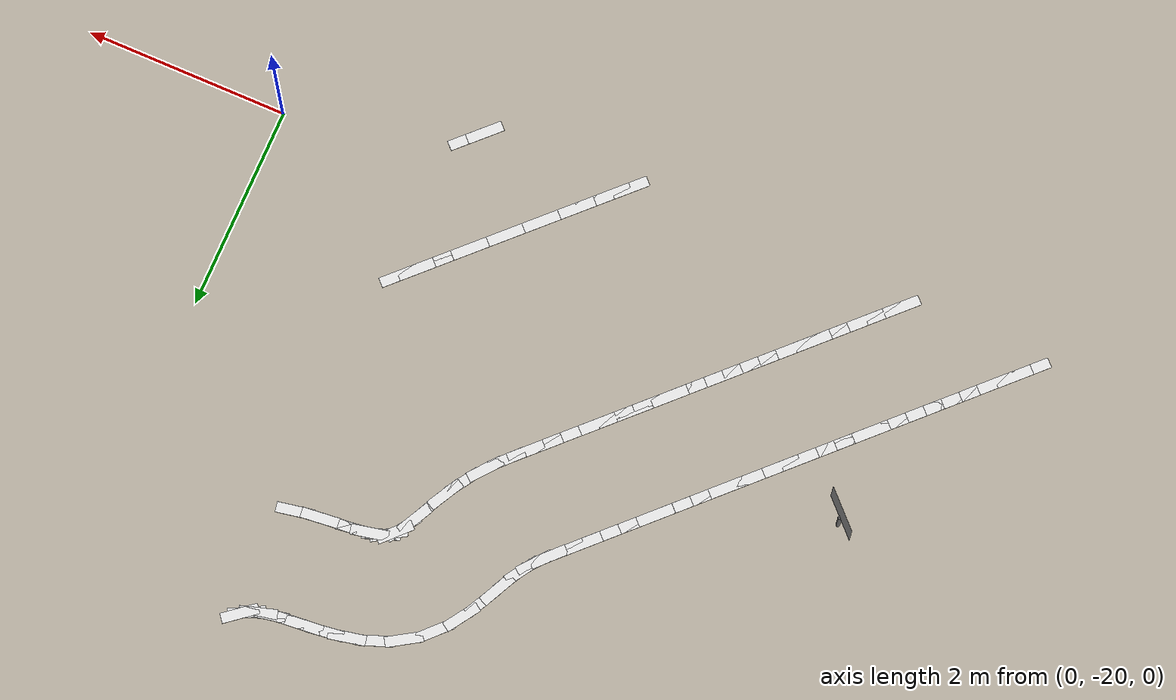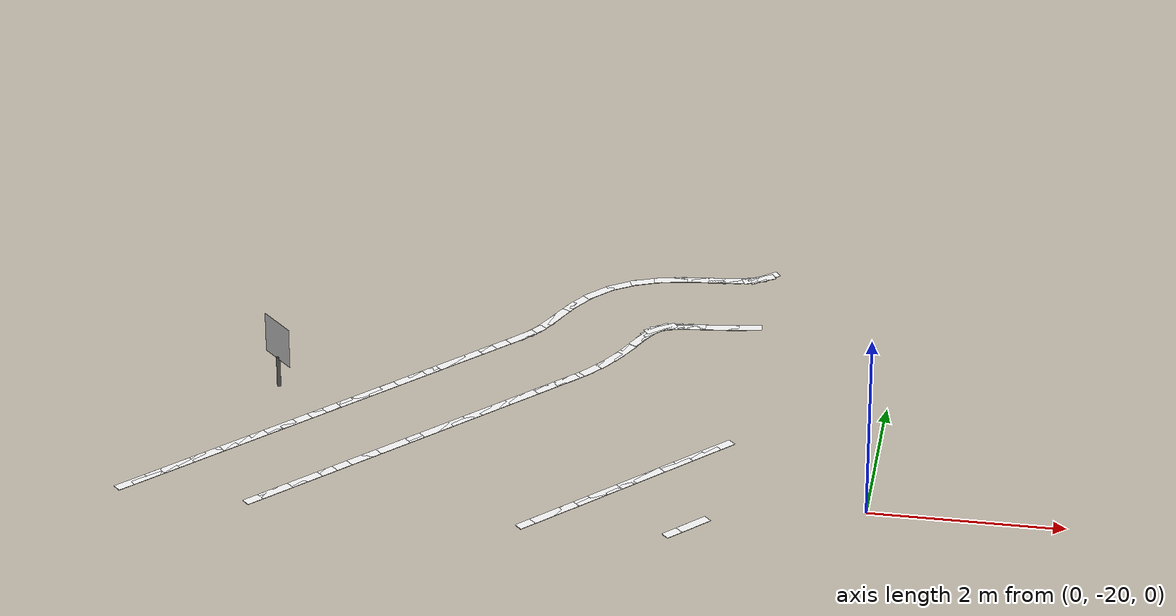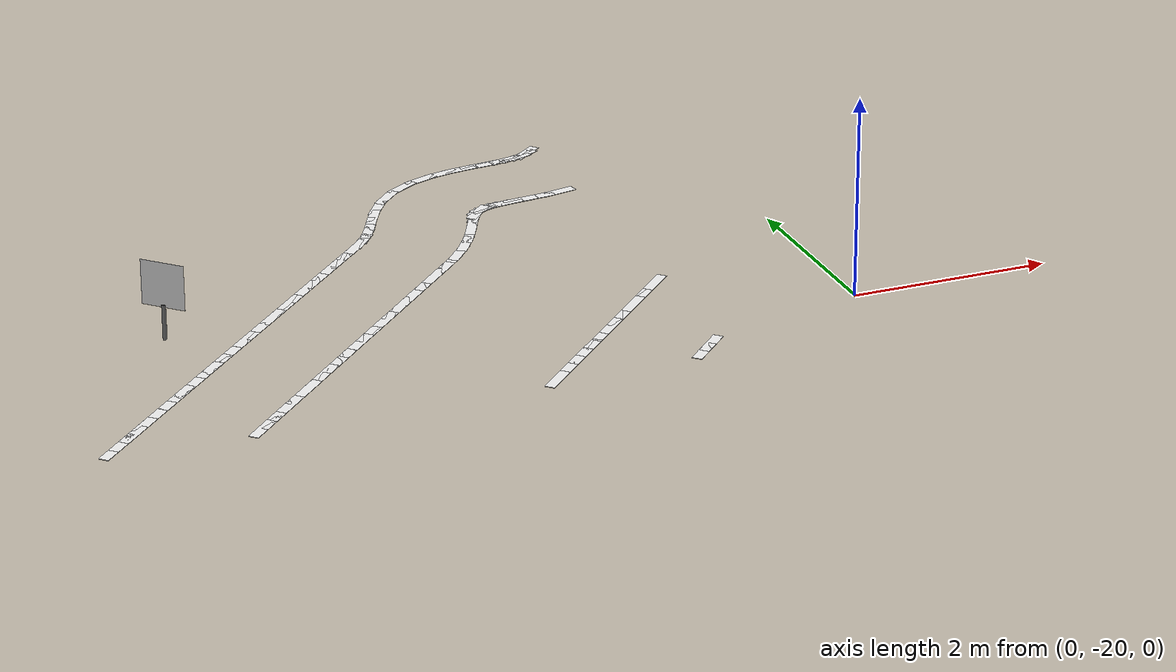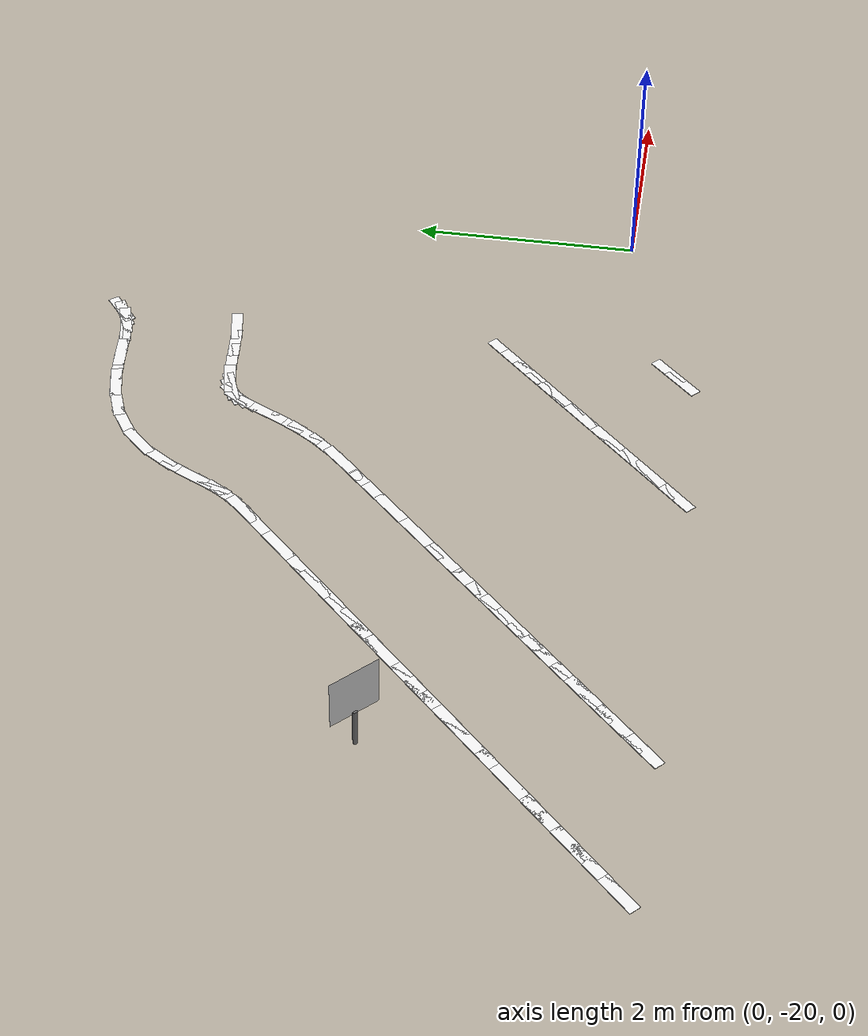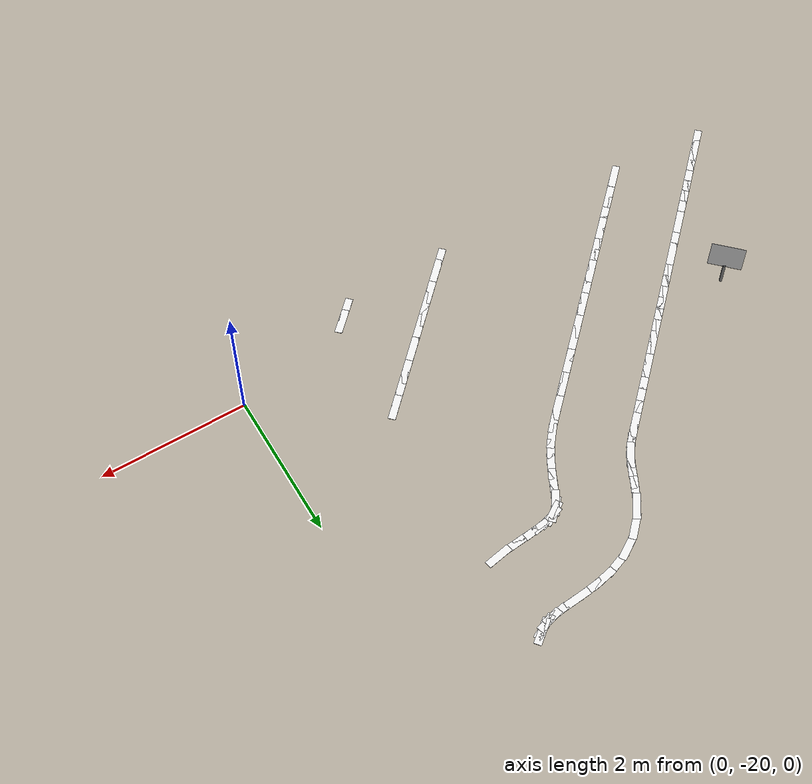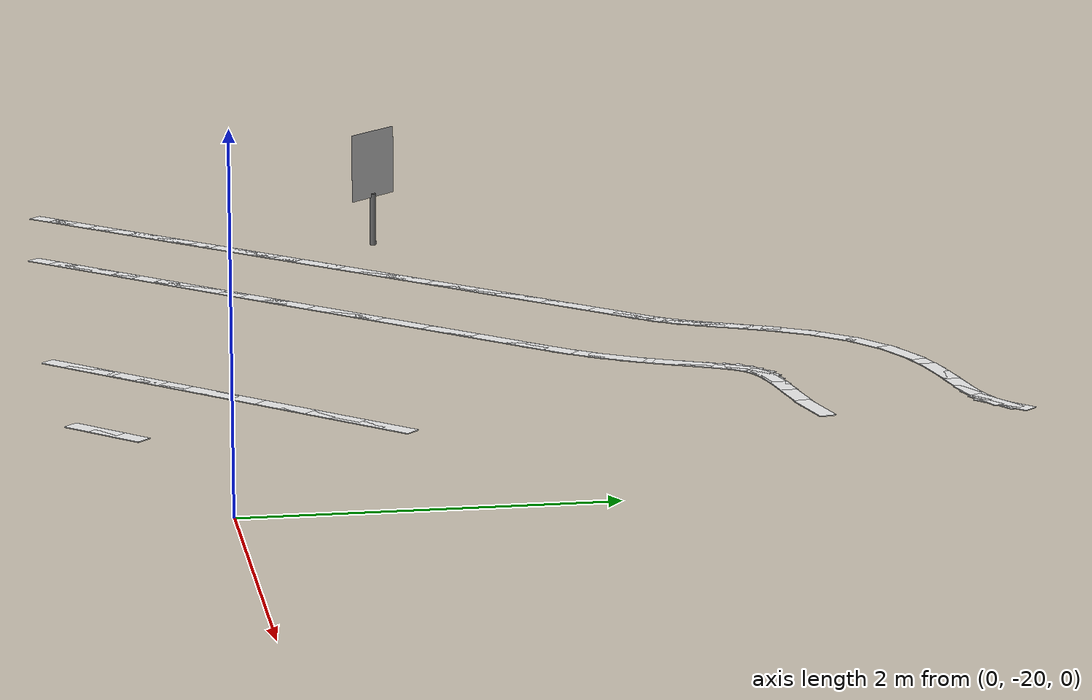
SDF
<sdf version="1.7">
 <world name="cone_lane">
  <model name="ground_plane">
   <static>true</static>
   <link name="link">
    <collision name="collision">
     <geometry><plane><normal>0 0 1</normal><size>150 150</size></plane></geometry>
     <surface><friction><ode><mu>1.0</mu></ode></friction></surface>
    </collision>
   </link>
  </model>
  <model name="line_L182">
   <static>true</static>
   <pose>-1.663 -16.570 0.0030 0 0 -2.9561</pose>
   <link name="link">
    <visual name="v">
     <geometry><box><size>0.360 0.100 0.005</size></box></geometry>
     <material>
      <ambient>0.85 0.85 0.85 1</ambient>
      <diffuse>0.95 0.95 0.95 1</diffuse>
      <specular>0.1 0.1 0.1 1</specular>
      <emissive>0.7 0.7 0.7 1</emissive>
     </material>
    </visual>
   </link>
  </model>
  <model name="line_L183">
   <static>true</static>
   <pose>-1.901 -16.603 0.0030 0 0 -3.0367</pose>
   <link name="link">
    <visual name="v">
     <geometry><box><size>0.360 0.100 0.005</size></box></geometry>
     <material>
      <ambient>0.85 0.85 0.85 1</ambient>
      <diffuse>0.95 0.95 0.95 1</diffuse>
      <specular>0.1 0.1 0.1 1</specular>
      <emissive>0.7 0.7 0.7 1</emissive>
     </material>
    </visual>
   </link>
  </model>
  <model name="line_L184">
   <static>true</static>
   <pose>-2.089 -16.621 0.0030 0 0 -3.0495</pose>
   <link name="link">
    <visual name="v">
     <geometry><box><size>0.360 0.100 0.005</size></box></geometry>
     <material>
      <ambient>0.85 0.85 0.85 1</ambient>
      <diffuse>0.95 0.95 0.95 1</diffuse>
      <specular>0.1 0.1 0.1 1</specular>
      <emissive>0.7 0.7 0.7 1</emissive>
     </material>
    </visual>
   </link>
  </model>
  <model name="line_L185">
   <static>true</static>
   <pose>-2.250 -16.638 0.0030 0 0 -3.0148</pose>
   <link name="link">
    <visual name="v">
     <geometry><box><size>0.360 0.100 0.005</size></box></geometry>
     <material>
      <ambient>0.85 0.85 0.85 1</ambient>
      <diffuse>0.95 0.95 0.95 1</diffuse>
      <specular>0.1 0.1 0.1 1</specular>
      <emissive>0.7 0.7 0.7 1</emissive>
     </material>
    </visual>
   </link>
  </model>
  <model name="line_L186">
   <static>true</static>
   <pose>-2.380 -16.659 0.0030 0 0 -2.9330</pose>
   <link name="link">
    <visual name="v">
     <geometry><box><size>0.360 0.100 0.005</size></box></geometry>
     <material>
      <ambient>0.85 0.85 0.85 1</ambient>
      <diffuse>0.95 0.95 0.95 1</diffuse>
      <specular>0.1 0.1 0.1 1</specular>
      <emissive>0.7 0.7 0.7 1</emissive>
     </material>
    </visual>
   </link>
  </model>
  <model name="line_L187">
   <static>true</static>
   <pose>-2.484 -16.688 0.0030 0 0 -2.7818</pose>
   <link name="link">
    <visual name="v">
     <geometry><box><size>0.360 0.100 0.005</size></box></geometry>
     <material>
      <ambient>0.85 0.85 0.85 1</ambient>
      <diffuse>0.95 0.95 0.95 1</diffuse>
      <specular>0.1 0.1 0.1 1</specular>
      <emissive>0.7 0.7 0.7 1</emissive>
     </material>
    </visual>
   </link>
  </model>
  <model name="line_L188">
   <static>true</static>
   <pose>-2.546 -16.718 0.0030 0 0 -2.5806</pose>
   <link name="link">
    <visual name="v">
     <geometry><box><size>0.360 0.100 0.005</size></box></geometry>
     <material>
      <ambient>0.85 0.85 0.85 1</ambient>
      <diffuse>0.95 0.95 0.95 1</diffuse>
      <specular>0.1 0.1 0.1 1</specular>
      <emissive>0.7 0.7 0.7 1</emissive>
     </material>
    </visual>
   </link>
  </model>
  <model name="line_L189">
   <static>true</static>
   <pose>-2.593 -16.757 0.0030 0 0 -2.3418</pose>
   <link name="link">
    <visual name="v">
     <geometry><box><size>0.360 0.100 0.005</size></box></geometry>
     <material>
      <ambient>0.85 0.85 0.85 1</ambient>
      <diffuse>0.95 0.95 0.95 1</diffuse>
      <specular>0.1 0.1 0.1 1</specular>
      <emissive>0.7 0.7 0.7 1</emissive>
     </material>
    </visual>
   </link>
  </model>
  <model name="line_L190">
   <static>true</static>
   <pose>-2.647 -16.826 0.0030 0 0 -2.1537</pose>
   <link name="link">
    <visual name="v">
     <geometry><box><size>0.360 0.100 0.005</size></box></geometry>
     <material>
      <ambient>0.85 0.85 0.85 1</ambient>
      <diffuse>0.95 0.95 0.95 1</diffuse>
      <specular>0.1 0.1 0.1 1</specular>
      <emissive>0.7 0.7 0.7 1</emissive>
     </material>
    </visual>
   </link>
  </model>
  <model name="line_L191">
   <static>true</static>
   <pose>-2.714 -16.943 0.0030 0 0 -2.0496</pose>
   <link name="link">
    <visual name="v">
     <geometry><box><size>0.360 0.100 0.005</size></box></geometry>
     <material>
      <ambient>0.85 0.85 0.85 1</ambient>
      <diffuse>0.95 0.95 0.95 1</diffuse>
      <specular>0.1 0.1 0.1 1</specular>
      <emissive>0.7 0.7 0.7 1</emissive>
     </material>
    </visual>
   </link>
  </model>
  <model name="line_L192">
   <static>true</static>
   <pose>-2.784 -17.084 0.0030 0 0 -2.0271</pose>
   <link name="link">
    <visual name="v">
     <geometry><box><size>0.360 0.100 0.005</size></box></geometry>
     <material>
      <ambient>0.85 0.85 0.85 1</ambient>
      <diffuse>0.95 0.95 0.95 1</diffuse>
      <specular>0.1 0.1 0.1 1</specular>
      <emissive>0.7 0.7 0.7 1</emissive>
     </material>
    </visual>
   </link>
  </model>
  <model name="line_L193">
   <static>true</static>
   <pose>-2.879 -17.270 0.0030 0 0 -2.0680</pose>
   <link name="link">
    <visual name="v">
     <geometry><box><size>0.360 0.100 0.005</size></box></geometry>
     <material>
      <ambient>0.85 0.85 0.85 1</ambient>
      <diffuse>0.95 0.95 0.95 1</diffuse>
      <specular>0.1 0.1 0.1 1</specular>
      <emissive>0.7 0.7 0.7 1</emissive>
     </material>
    </visual>
   </link>
  </model>
  <model name="line_L194">
   <static>true</static>
   <pose>-2.984 -17.446 0.0030 0 0 -2.1465</pose>
   <link name="link">
    <visual name="v">
     <geometry><box><size>0.360 0.100 0.005</size></box></geometry>
     <material>
      <ambient>0.85 0.85 0.85 1</ambient>
      <diffuse>0.95 0.95 0.95 1</diffuse>
      <specular>0.1 0.1 0.1 1</specular>
      <emissive>0.7 0.7 0.7 1</emissive>
     </material>
    </visual>
   </link>
  </model>
  <model name="line_L195">
   <static>true</static>
   <pose>-3.122 -17.636 0.0030 0 0 -2.2515</pose>
   <link name="link">
    <visual name="v">
     <geometry><box><size>0.360 0.100 0.005</size></box></geometry>
     <material>
      <ambient>0.85 0.85 0.85 1</ambient>
      <diffuse>0.95 0.95 0.95 1</diffuse>
      <specular>0.1 0.1 0.1 1</specular>
      <emissive>0.7 0.7 0.7 1</emissive>
     </material>
    </visual>
   </link>
  </model>
  <model name="line_L196">
   <static>true</static>
   <pose>-3.268 -17.802 0.0030 0 0 -2.3332</pose>
   <link name="link">
    <visual name="v">
     <geometry><box><size>0.360 0.100 0.005</size></box></geometry>
     <material>
      <ambient>0.85 0.85 0.85 1</ambient>
      <diffuse>0.95 0.95 0.95 1</diffuse>
      <specular>0.1 0.1 0.1 1</specular>
      <emissive>0.7 0.7 0.7 1</emissive>
     </material>
    </visual>
   </link>
  </model>
  <model name="line_L197">
   <static>true</static>
   <pose>-3.403 -17.938 0.0030 0 0 -2.3562</pose>
   <link name="link">
    <visual name="v">
     <geometry><box><size>0.360 0.100 0.005</size></box></geometry>
     <material>
      <ambient>0.85 0.85 0.85 1</ambient>
      <diffuse>0.95 0.95 0.95 1</diffuse>
      <specular>0.1 0.1 0.1 1</specular>
      <emissive>0.7 0.7 0.7 1</emissive>
     </material>
    </visual>
   </link>
  </model>
  <model name="line_L198">
   <static>true</static>
   <pose>-3.530 -18.065 0.0030 0 0 -2.3562</pose>
   <link name="link">
    <visual name="v">
     <geometry><box><size>0.360 0.100 0.005</size></box></geometry>
     <material>
      <ambient>0.85 0.85 0.85 1</ambient>
      <diffuse>0.95 0.95 0.95 1</diffuse>
      <specular>0.1 0.1 0.1 1</specular>
      <emissive>0.7 0.7 0.7 1</emissive>
     </material>
    </visual>
   </link>
  </model>
  <model name="line_L199">
   <static>true</static>
   <pose>-3.657 -18.193 0.0030 0 0 -2.3562</pose>
   <link name="link">
    <visual name="v">
     <geometry><box><size>0.360 0.100 0.005</size></box></geometry>
     <material>
      <ambient>0.85 0.85 0.85 1</ambient>
      <diffuse>0.95 0.95 0.95 1</diffuse>
      <specular>0.1 0.1 0.1 1</specular>
      <emissive>0.7 0.7 0.7 1</emissive>
     </material>
    </visual>
   </link>
  </model>
  <model name="line_L200">
   <static>true</static>
   <pose>-3.784 -18.320 0.0030 0 0 -2.3562</pose>
   <link name="link">
    <visual name="v">
     <geometry><box><size>0.360 0.100 0.005</size></box></geometry>
     <material>
      <ambient>0.85 0.85 0.85 1</ambient>
      <diffuse>0.95 0.95 0.95 1</diffuse>
      <specular>0.1 0.1 0.1 1</specular>
      <emissive>0.7 0.7 0.7 1</emissive>
     </material>
    </visual>
   </link>
  </model>
  <model name="line_L201">
   <static>true</static>
   <pose>-3.912 -18.447 0.0030 0 0 -2.3562</pose>
   <link name="link">
    <visual name="v">
     <geometry><box><size>0.360 0.100 0.005</size></box></geometry>
     <material>
      <ambient>0.85 0.85 0.85 1</ambient>
      <diffuse>0.95 0.95 0.95 1</diffuse>
      <specular>0.1 0.1 0.1 1</specular>
      <emissive>0.7 0.7 0.7 1</emissive>
     </material>
    </visual>
   </link>
  </model>
  <model name="line_L202">
   <static>true</static>
   <pose>-4.039 -18.575 0.0030 0 0 -2.3562</pose>
   <link name="link">
    <visual name="v">
     <geometry><box><size>0.360 0.100 0.005</size></box></geometry>
     <material>
      <ambient>0.85 0.85 0.85 1</ambient>
      <diffuse>0.95 0.95 0.95 1</diffuse>
      <specular>0.1 0.1 0.1 1</specular>
      <emissive>0.7 0.7 0.7 1</emissive>
     </material>
    </visual>
   </link>
  </model>
  <model name="line_L203">
   <static>true</static>
   <pose>-4.166 -18.702 0.0030 0 0 -2.3562</pose>
   <link name="link">
    <visual name="v">
     <geometry><box><size>0.360 0.100 0.005</size></box></geometry>
     <material>
      <ambient>0.85 0.85 0.85 1</ambient>
      <diffuse>0.95 0.95 0.95 1</diffuse>
      <specular>0.1 0.1 0.1 1</specular>
      <emissive>0.7 0.7 0.7 1</emissive>
     </material>
    </visual>
   </link>
  </model>
  <model name="line_L204">
   <static>true</static>
   <pose>-4.294 -18.829 0.0030 0 0 -2.3562</pose>
   <link name="link">
    <visual name="v">
     <geometry><box><size>0.360 0.100 0.005</size></box></geometry>
     <material>
      <ambient>0.85 0.85 0.85 1</ambient>
      <diffuse>0.95 0.95 0.95 1</diffuse>
      <specular>0.1 0.1 0.1 1</specular>
      <emissive>0.7 0.7 0.7 1</emissive>
     </material>
    </visual>
   </link>
  </model>
  <model name="line_L205">
   <static>true</static>
   <pose>-4.421 -18.956 0.0030 0 0 -2.3562</pose>
   <link name="link">
    <visual name="v">
     <geometry><box><size>0.360 0.100 0.005</size></box></geometry>
     <material>
      <ambient>0.85 0.85 0.85 1</ambient>
      <diffuse>0.95 0.95 0.95 1</diffuse>
      <specular>0.1 0.1 0.1 1</specular>
      <emissive>0.7 0.7 0.7 1</emissive>
     </material>
    </visual>
   </link>
  </model>
  <model name="line_L206">
   <static>true</static>
   <pose>-4.548 -19.084 0.0030 0 0 -2.3562</pose>
   <link name="link">
    <visual name="v">
     <geometry><box><size>0.360 0.100 0.005</size></box></geometry>
     <material>
      <ambient>0.85 0.85 0.85 1</ambient>
      <diffuse>0.95 0.95 0.95 1</diffuse>
      <specular>0.1 0.1 0.1 1</specular>
      <emissive>0.7 0.7 0.7 1</emissive>
     </material>
    </visual>
   </link>
  </model>
  <model name="line_L207">
   <static>true</static>
   <pose>-4.675 -19.211 0.0030 0 0 -2.3562</pose>
   <link name="link">
    <visual name="v">
     <geometry><box><size>0.360 0.100 0.005</size></box></geometry>
     <material>
      <ambient>0.85 0.85 0.85 1</ambient>
      <diffuse>0.95 0.95 0.95 1</diffuse>
      <specular>0.1 0.1 0.1 1</specular>
      <emissive>0.7 0.7 0.7 1</emissive>
     </material>
    </visual>
   </link>
  </model>
  <model name="line_L208">
   <static>true</static>
   <pose>-4.803 -19.338 0.0030 0 0 -2.3562</pose>
   <link name="link">
    <visual name="v">
     <geometry><box><size>0.360 0.100 0.005</size></box></geometry>
     <material>
      <ambient>0.85 0.85 0.85 1</ambient>
      <diffuse>0.95 0.95 0.95 1</diffuse>
      <specular>0.1 0.1 0.1 1</specular>
      <emissive>0.7 0.7 0.7 1</emissive>
     </material>
    </visual>
   </link>
  </model>
  <model name="line_L209">
   <static>true</static>
   <pose>-4.930 -19.466 0.0030 0 0 -2.3562</pose>
   <link name="link">
    <visual name="v">
     <geometry><box><size>0.360 0.100 0.005</size></box></geometry>
     <material>
      <ambient>0.85 0.85 0.85 1</ambient>
      <diffuse>0.95 0.95 0.95 1</diffuse>
      <specular>0.1 0.1 0.1 1</specular>
      <emissive>0.7 0.7 0.7 1</emissive>
     </material>
    </visual>
   </link>
  </model>
  <model name="line_L210">
   <static>true</static>
   <pose>-5.057 -19.593 0.0030 0 0 -2.3562</pose>
   <link name="link">
    <visual name="v">
     <geometry><box><size>0.360 0.100 0.005</size></box></geometry>
     <material>
      <ambient>0.85 0.85 0.85 1</ambient>
      <diffuse>0.95 0.95 0.95 1</diffuse>
      <specular>0.1 0.1 0.1 1</specular>
      <emissive>0.7 0.7 0.7 1</emissive>
     </material>
    </visual>
   </link>
  </model>
  <model name="line_L211">
   <static>true</static>
   <pose>-5.185 -19.720 0.0030 0 0 -2.3562</pose>
   <link name="link">
    <visual name="v">
     <geometry><box><size>0.360 0.100 0.005</size></box></geometry>
     <material>
      <ambient>0.85 0.85 0.85 1</ambient>
      <diffuse>0.95 0.95 0.95 1</diffuse>
      <specular>0.1 0.1 0.1 1</specular>
      <emissive>0.7 0.7 0.7 1</emissive>
     </material>
    </visual>
   </link>
  </model>
  <model name="line_L212">
   <static>true</static>
   <pose>-5.312 -19.847 0.0030 0 0 -2.3562</pose>
   <link name="link">
    <visual name="v">
     <geometry><box><size>0.360 0.100 0.005</size></box></geometry>
     <material>
      <ambient>0.85 0.85 0.85 1</ambient>
      <diffuse>0.95 0.95 0.95 1</diffuse>
      <specular>0.1 0.1 0.1 1</specular>
      <emissive>0.7 0.7 0.7 1</emissive>
     </material>
    </visual>
   </link>
  </model>
  <model name="line_L213">
   <static>true</static>
   <pose>-5.439 -19.975 0.0030 0 0 -2.3562</pose>
   <link name="link">
    <visual name="v">
     <geometry><box><size>0.360 0.100 0.005</size></box></geometry>
     <material>
      <ambient>0.85 0.85 0.85 1</ambient>
      <diffuse>0.95 0.95 0.95 1</diffuse>
      <specular>0.1 0.1 0.1 1</specular>
      <emissive>0.7 0.7 0.7 1</emissive>
     </material>
    </visual>
   </link>
  </model>
  <model name="line_L214">
   <static>true</static>
   <pose>-5.566 -20.102 0.0030 0 0 -2.3562</pose>
   <link name="link">
    <visual name="v">
     <geometry><box><size>0.360 0.100 0.005</size></box></geometry>
     <material>
      <ambient>0.85 0.85 0.85 1</ambient>
      <diffuse>0.95 0.95 0.95 1</diffuse>
      <specular>0.1 0.1 0.1 1</specular>
      <emissive>0.7 0.7 0.7 1</emissive>
     </material>
    </visual>
   </link>
  </model>
  <model name="line_L215">
   <static>true</static>
   <pose>-5.694 -20.229 0.0030 0 0 -2.3562</pose>
   <link name="link">
    <visual name="v">
     <geometry><box><size>0.360 0.100 0.005</size></box></geometry>
     <material>
      <ambient>0.85 0.85 0.85 1</ambient>
      <diffuse>0.95 0.95 0.95 1</diffuse>
      <specular>0.1 0.1 0.1 1</specular>
      <emissive>0.7 0.7 0.7 1</emissive>
     </material>
    </visual>
   </link>
  </model>
  <model name="line_L216">
   <static>true</static>
   <pose>-5.821 -20.356 0.0030 0 0 -2.3562</pose>
   <link name="link">
    <visual name="v">
     <geometry><box><size>0.360 0.100 0.005</size></box></geometry>
     <material>
      <ambient>0.85 0.85 0.85 1</ambient>
      <diffuse>0.95 0.95 0.95 1</diffuse>
      <specular>0.1 0.1 0.1 1</specular>
      <emissive>0.7 0.7 0.7 1</emissive>
     </material>
    </visual>
   </link>
  </model>
  <model name="line_L217">
   <static>true</static>
   <pose>-5.948 -20.484 0.0030 0 0 -2.3562</pose>
   <link name="link">
    <visual name="v">
     <geometry><box><size>0.360 0.100 0.005</size></box></geometry>
     <material>
      <ambient>0.85 0.85 0.85 1</ambient>
      <diffuse>0.95 0.95 0.95 1</diffuse>
      <specular>0.1 0.1 0.1 1</specular>
      <emissive>0.7 0.7 0.7 1</emissive>
     </material>
    </visual>
   </link>
  </model>
  <model name="line_L218">
   <static>true</static>
   <pose>-6.076 -20.611 0.0030 0 0 -2.3562</pose>
   <link name="link">
    <visual name="v">
     <geometry><box><size>0.360 0.100 0.005</size></box></geometry>
     <material>
      <ambient>0.85 0.85 0.85 1</ambient>
      <diffuse>0.95 0.95 0.95 1</diffuse>
      <specular>0.1 0.1 0.1 1</specular>
      <emissive>0.7 0.7 0.7 1</emissive>
     </material>
    </visual>
   </link>
  </model>
  <model name="line_L268">
   <static>true</static>
   <pose>-3.290 -20.653 0.0030 0 0 0.7854</pose>
   <link name="link">
    <visual name="v">
     <geometry><box><size>0.360 0.100 0.005</size></box></geometry>
     <material>
      <ambient>0.85 0.85 0.85 1</ambient>
      <diffuse>0.95 0.95 0.95 1</diffuse>
      <specular>0.1 0.1 0.1 1</specular>
      <emissive>0.7 0.7 0.7 1</emissive>
     </material>
    </visual>
   </link>
  </model>
  <model name="line_L269">
   <static>true</static>
   <pose>-3.162 -20.526 0.0030 0 0 0.7854</pose>
   <link name="link">
    <visual name="v">
     <geometry><box><size>0.360 0.100 0.005</size></box></geometry>
     <material>
      <ambient>0.85 0.85 0.85 1</ambient>
      <diffuse>0.95 0.95 0.95 1</diffuse>
      <specular>0.1 0.1 0.1 1</specular>
      <emissive>0.7 0.7 0.7 1</emissive>
     </material>
    </visual>
   </link>
  </model>
  <model name="line_L270">
   <static>true</static>
   <pose>-3.035 -20.399 0.0030 0 0 0.7854</pose>
   <link name="link">
    <visual name="v">
     <geometry><box><size>0.360 0.100 0.005</size></box></geometry>
     <material>
      <ambient>0.85 0.85 0.85 1</ambient>
      <diffuse>0.95 0.95 0.95 1</diffuse>
      <specular>0.1 0.1 0.1 1</specular>
      <emissive>0.7 0.7 0.7 1</emissive>
     </material>
    </visual>
   </link>
  </model>
  <model name="line_L271">
   <static>true</static>
   <pose>-2.908 -20.272 0.0030 0 0 0.7854</pose>
   <link name="link">
    <visual name="v">
     <geometry><box><size>0.360 0.100 0.005</size></box></geometry>
     <material>
      <ambient>0.85 0.85 0.85 1</ambient>
      <diffuse>0.95 0.95 0.95 1</diffuse>
      <specular>0.1 0.1 0.1 1</specular>
      <emissive>0.7 0.7 0.7 1</emissive>
     </material>
    </visual>
   </link>
  </model>
  <model name="line_L272">
   <static>true</static>
   <pose>-2.780 -20.144 0.0030 0 0 0.7854</pose>
   <link name="link">
    <visual name="v">
     <geometry><box><size>0.360 0.100 0.005</size></box></geometry>
     <material>
      <ambient>0.85 0.85 0.85 1</ambient>
      <diffuse>0.95 0.95 0.95 1</diffuse>
      <specular>0.1 0.1 0.1 1</specular>
      <emissive>0.7 0.7 0.7 1</emissive>
     </material>
    </visual>
   </link>
  </model>
  <model name="line_L273">
   <static>true</static>
   <pose>-2.653 -20.017 0.0030 0 0 0.7854</pose>
   <link name="link">
    <visual name="v">
     <geometry><box><size>0.360 0.100 0.005</size></box></geometry>
     <material>
      <ambient>0.85 0.85 0.85 1</ambient>
      <diffuse>0.95 0.95 0.95 1</diffuse>
      <specular>0.1 0.1 0.1 1</specular>
      <emissive>0.7 0.7 0.7 1</emissive>
     </material>
    </visual>
   </link>
  </model>
  <model name="line_L274">
   <static>true</static>
   <pose>-2.526 -19.890 0.0030 0 0 0.7854</pose>
   <link name="link">
    <visual name="v">
     <geometry><box><size>0.360 0.100 0.005</size></box></geometry>
     <material>
      <ambient>0.85 0.85 0.85 1</ambient>
      <diffuse>0.95 0.95 0.95 1</diffuse>
      <specular>0.1 0.1 0.1 1</specular>
      <emissive>0.7 0.7 0.7 1</emissive>
     </material>
    </visual>
   </link>
  </model>
  <model name="line_L275">
   <static>true</static>
   <pose>-2.399 -19.763 0.0030 0 0 0.7854</pose>
   <link name="link">
    <visual name="v">
     <geometry><box><size>0.360 0.100 0.005</size></box></geometry>
     <material>
      <ambient>0.85 0.85 0.85 1</ambient>
      <diffuse>0.95 0.95 0.95 1</diffuse>
      <specular>0.1 0.1 0.1 1</specular>
      <emissive>0.7 0.7 0.7 1</emissive>
     </material>
    </visual>
   </link>
  </model>
  <model name="line_L276">
   <static>true</static>
   <pose>-2.271 -19.635 0.0030 0 0 0.7854</pose>
   <link name="link">
    <visual name="v">
     <geometry><box><size>0.360 0.100 0.005</size></box></geometry>
     <material>
      <ambient>0.85 0.85 0.85 1</ambient>
      <diffuse>0.95 0.95 0.95 1</diffuse>
      <specular>0.1 0.1 0.1 1</specular>
      <emissive>0.7 0.7 0.7 1</emissive>
     </material>
    </visual>
   </link>
  </model>
  <model name="line_L277">
   <static>true</static>
   <pose>-2.144 -19.508 0.0030 0 0 0.7854</pose>
   <link name="link">
    <visual name="v">
     <geometry><box><size>0.360 0.100 0.005</size></box></geometry>
     <material>
      <ambient>0.85 0.85 0.85 1</ambient>
      <diffuse>0.95 0.95 0.95 1</diffuse>
      <specular>0.1 0.1 0.1 1</specular>
      <emissive>0.7 0.7 0.7 1</emissive>
     </material>
    </visual>
   </link>
  </model>
  <model name="line_L278">
   <static>true</static>
   <pose>-2.017 -19.381 0.0030 0 0 0.7854</pose>
   <link name="link">
    <visual name="v">
     <geometry><box><size>0.360 0.100 0.005</size></box></geometry>
     <material>
      <ambient>0.85 0.85 0.85 1</ambient>
      <diffuse>0.95 0.95 0.95 1</diffuse>
      <specular>0.1 0.1 0.1 1</specular>
      <emissive>0.7 0.7 0.7 1</emissive>
     </material>
    </visual>
   </link>
  </model>
  <model name="line_L279">
   <static>true</static>
   <pose>-1.889 -19.253 0.0030 0 0 0.7854</pose>
   <link name="link">
    <visual name="v">
     <geometry><box><size>0.360 0.100 0.005</size></box></geometry>
     <material>
      <ambient>0.85 0.85 0.85 1</ambient>
      <diffuse>0.95 0.95 0.95 1</diffuse>
      <specular>0.1 0.1 0.1 1</specular>
      <emissive>0.7 0.7 0.7 1</emissive>
     </material>
    </visual>
   </link>
  </model>
  <model name="line_L280">
   <static>true</static>
   <pose>-1.762 -19.126 0.0030 0 0 0.7854</pose>
   <link name="link">
    <visual name="v">
     <geometry><box><size>0.360 0.100 0.005</size></box></geometry>
     <material>
      <ambient>0.85 0.85 0.85 1</ambient>
      <diffuse>0.95 0.95 0.95 1</diffuse>
      <specular>0.1 0.1 0.1 1</specular>
      <emissive>0.7 0.7 0.7 1</emissive>
     </material>
    </visual>
   </link>
  </model>
  <model name="line_L281">
   <static>true</static>
   <pose>-1.635 -18.999 0.0030 0 0 0.7854</pose>
   <link name="link">
    <visual name="v">
     <geometry><box><size>0.360 0.100 0.005</size></box></geometry>
     <material>
      <ambient>0.85 0.85 0.85 1</ambient>
      <diffuse>0.95 0.95 0.95 1</diffuse>
      <specular>0.1 0.1 0.1 1</specular>
      <emissive>0.7 0.7 0.7 1</emissive>
     </material>
    </visual>
   </link>
  </model>
  <model name="line_R179">
   <static>true</static>
   <pose>-1.591 -15.488 0.0030 0 0 -2.4640</pose>
   <link name="link">
    <visual name="v">
     <geometry><box><size>0.360 0.100 0.005</size></box></geometry>
     <material>
      <ambient>0.85 0.85 0.85 1</ambient>
      <diffuse>0.95 0.95 0.95 1</diffuse>
      <specular>0.1 0.1 0.1 1</specular>
      <emissive>0.7 0.7 0.7 1</emissive>
     </material>
    </visual>
   </link>
  </model>
  <model name="line_R180">
   <static>true</static>
   <pose>-1.645 -15.522 0.0030 0 0 -2.6641</pose>
   <link name="link">
    <visual name="v">
     <geometry><box><size>0.360 0.100 0.005</size></box></geometry>
     <material>
      <ambient>0.85 0.85 0.85 1</ambient>
      <diffuse>0.95 0.95 0.95 1</diffuse>
      <specular>0.1 0.1 0.1 1</specular>
      <emissive>0.7 0.7 0.7 1</emissive>
     </material>
    </visual>
   </link>
  </model>
  <model name="line_R181">
   <static>true</static>
   <pose>-1.743 -15.561 0.0030 0 0 -2.8431</pose>
   <link name="link">
    <visual name="v">
     <geometry><box><size>0.360 0.100 0.005</size></box></geometry>
     <material>
      <ambient>0.85 0.85 0.85 1</ambient>
      <diffuse>0.95 0.95 0.95 1</diffuse>
      <specular>0.1 0.1 0.1 1</specular>
      <emissive>0.7 0.7 0.7 1</emissive>
     </material>
    </visual>
   </link>
  </model>
  <model name="line_R182">
   <static>true</static>
   <pose>-1.847 -15.587 0.0030 0 0 -2.9561</pose>
   <link name="link">
    <visual name="v">
     <geometry><box><size>0.360 0.100 0.005</size></box></geometry>
     <material>
      <ambient>0.85 0.85 0.85 1</ambient>
      <diffuse>0.95 0.95 0.95 1</diffuse>
      <specular>0.1 0.1 0.1 1</specular>
      <emissive>0.7 0.7 0.7 1</emissive>
     </material>
    </visual>
   </link>
  </model>
  <model name="line_R183">
   <static>true</static>
   <pose>-2.006 -15.609 0.0030 0 0 -3.0367</pose>
   <link name="link">
    <visual name="v">
     <geometry><box><size>0.360 0.100 0.005</size></box></geometry>
     <material>
      <ambient>0.85 0.85 0.85 1</ambient>
      <diffuse>0.95 0.95 0.95 1</diffuse>
      <specular>0.1 0.1 0.1 1</specular>
      <emissive>0.7 0.7 0.7 1</emissive>
     </material>
    </visual>
   </link>
  </model>
  <model name="line_R184">
   <static>true</static>
   <pose>-2.181 -15.625 0.0030 0 0 -3.0495</pose>
   <link name="link">
    <visual name="v">
     <geometry><box><size>0.360 0.100 0.005</size></box></geometry>
     <material>
      <ambient>0.85 0.85 0.85 1</ambient>
      <diffuse>0.95 0.95 0.95 1</diffuse>
      <specular>0.1 0.1 0.1 1</specular>
      <emissive>0.7 0.7 0.7 1</emissive>
     </material>
    </visual>
   </link>
  </model>
  <model name="line_R185">
   <static>true</static>
   <pose>-2.377 -15.646 0.0030 0 0 -3.0148</pose>
   <link name="link">
    <visual name="v">
     <geometry><box><size>0.360 0.100 0.005</size></box></geometry>
     <material>
      <ambient>0.85 0.85 0.85 1</ambient>
      <diffuse>0.95 0.95 0.95 1</diffuse>
      <specular>0.1 0.1 0.1 1</specular>
      <emissive>0.7 0.7 0.7 1</emissive>
     </material>
    </visual>
   </link>
  </model>
  <model name="line_R186">
   <static>true</static>
   <pose>-2.587 -15.681 0.0030 0 0 -2.9330</pose>
   <link name="link">
    <visual name="v">
     <geometry><box><size>0.360 0.100 0.005</size></box></geometry>
     <material>
      <ambient>0.85 0.85 0.85 1</ambient>
      <diffuse>0.95 0.95 0.95 1</diffuse>
      <specular>0.1 0.1 0.1 1</specular>
      <emissive>0.7 0.7 0.7 1</emissive>
     </material>
    </visual>
   </link>
  </model>
  <model name="line_R187">
   <static>true</static>
   <pose>-2.836 -15.752 0.0030 0 0 -2.7818</pose>
   <link name="link">
    <visual name="v">
     <geometry><box><size>0.360 0.100 0.005</size></box></geometry>
     <material>
      <ambient>0.85 0.85 0.85 1</ambient>
      <diffuse>0.95 0.95 0.95 1</diffuse>
      <specular>0.1 0.1 0.1 1</specular>
      <emissive>0.7 0.7 0.7 1</emissive>
     </material>
    </visual>
   </link>
  </model>
  <model name="line_R188">
   <static>true</static>
   <pose>-3.078 -15.871 0.0030 0 0 -2.5806</pose>
   <link name="link">
    <visual name="v">
     <geometry><box><size>0.360 0.100 0.005</size></box></geometry>
     <material>
      <ambient>0.85 0.85 0.85 1</ambient>
      <diffuse>0.95 0.95 0.95 1</diffuse>
      <specular>0.1 0.1 0.1 1</specular>
      <emissive>0.7 0.7 0.7 1</emissive>
     </material>
    </visual>
   </link>
  </model>
  <model name="line_R189">
   <static>true</static>
   <pose>-3.311 -16.060 0.0030 0 0 -2.3418</pose>
   <link name="link">
    <visual name="v">
     <geometry><box><size>0.360 0.100 0.005</size></box></geometry>
     <material>
      <ambient>0.85 0.85 0.85 1</ambient>
      <diffuse>0.95 0.95 0.95 1</diffuse>
      <specular>0.1 0.1 0.1 1</specular>
      <emissive>0.7 0.7 0.7 1</emissive>
     </material>
    </visual>
   </link>
  </model>
  <model name="line_R190">
   <static>true</static>
   <pose>-3.482 -16.276 0.0030 0 0 -2.1537</pose>
   <link name="link">
    <visual name="v">
     <geometry><box><size>0.360 0.100 0.005</size></box></geometry>
     <material>
      <ambient>0.85 0.85 0.85 1</ambient>
      <diffuse>0.95 0.95 0.95 1</diffuse>
      <specular>0.1 0.1 0.1 1</specular>
      <emissive>0.7 0.7 0.7 1</emissive>
     </material>
    </visual>
   </link>
  </model>
  <model name="line_R191">
   <static>true</static>
   <pose>-3.601 -16.482 0.0030 0 0 -2.0496</pose>
   <link name="link">
    <visual name="v">
     <geometry><box><size>0.360 0.100 0.005</size></box></geometry>
     <material>
      <ambient>0.85 0.85 0.85 1</ambient>
      <diffuse>0.95 0.95 0.95 1</diffuse>
      <specular>0.1 0.1 0.1 1</specular>
      <emissive>0.7 0.7 0.7 1</emissive>
     </material>
    </visual>
   </link>
  </model>
  <model name="line_R192">
   <static>true</static>
   <pose>-3.682 -16.643 0.0030 0 0 -2.0271</pose>
   <link name="link">
    <visual name="v">
     <geometry><box><size>0.360 0.100 0.005</size></box></geometry>
     <material>
      <ambient>0.85 0.85 0.85 1</ambient>
      <diffuse>0.95 0.95 0.95 1</diffuse>
      <specular>0.1 0.1 0.1 1</specular>
      <emissive>0.7 0.7 0.7 1</emissive>
     </material>
    </visual>
   </link>
  </model>
  <model name="line_R193">
   <static>true</static>
   <pose>-3.758 -16.793 0.0030 0 0 -2.0680</pose>
   <link name="link">
    <visual name="v">
     <geometry><box><size>0.360 0.100 0.005</size></box></geometry>
     <material>
      <ambient>0.85 0.85 0.85 1</ambient>
      <diffuse>0.95 0.95 0.95 1</diffuse>
      <specular>0.1 0.1 0.1 1</specular>
      <emissive>0.7 0.7 0.7 1</emissive>
     </material>
    </visual>
   </link>
  </model>
  <model name="line_R194">
   <static>true</static>
   <pose>-3.822 -16.902 0.0030 0 0 -2.1465</pose>
   <link name="link">
    <visual name="v">
     <geometry><box><size>0.360 0.100 0.005</size></box></geometry>
     <material>
      <ambient>0.85 0.85 0.85 1</ambient>
      <diffuse>0.95 0.95 0.95 1</diffuse>
      <specular>0.1 0.1 0.1 1</specular>
      <emissive>0.7 0.7 0.7 1</emissive>
     </material>
    </visual>
   </link>
  </model>
  <model name="line_R195">
   <static>true</static>
   <pose>-3.899 -17.007 0.0030 0 0 -2.2515</pose>
   <link name="link">
    <visual name="v">
     <geometry><box><size>0.360 0.100 0.005</size></box></geometry>
     <material>
      <ambient>0.85 0.85 0.85 1</ambient>
      <diffuse>0.95 0.95 0.95 1</diffuse>
      <specular>0.1 0.1 0.1 1</specular>
      <emissive>0.7 0.7 0.7 1</emissive>
     </material>
    </visual>
   </link>
  </model>
  <model name="line_R196">
   <static>true</static>
   <pose>-3.991 -17.111 0.0030 0 0 -2.3332</pose>
   <link name="link">
    <visual name="v">
     <geometry><box><size>0.360 0.100 0.005</size></box></geometry>
     <material>
      <ambient>0.85 0.85 0.85 1</ambient>
      <diffuse>0.95 0.95 0.95 1</diffuse>
      <specular>0.1 0.1 0.1 1</specular>
      <emissive>0.7 0.7 0.7 1</emissive>
     </material>
    </visual>
   </link>
  </model>
  <model name="line_R197">
   <static>true</static>
   <pose>-4.110 -17.231 0.0030 0 0 -2.3562</pose>
   <link name="link">
    <visual name="v">
     <geometry><box><size>0.360 0.100 0.005</size></box></geometry>
     <material>
      <ambient>0.85 0.85 0.85 1</ambient>
      <diffuse>0.95 0.95 0.95 1</diffuse>
      <specular>0.1 0.1 0.1 1</specular>
      <emissive>0.7 0.7 0.7 1</emissive>
     </material>
    </visual>
   </link>
  </model>
  <model name="line_R198">
   <static>true</static>
   <pose>-4.237 -17.358 0.0030 0 0 -2.3562</pose>
   <link name="link">
    <visual name="v">
     <geometry><box><size>0.360 0.100 0.005</size></box></geometry>
     <material>
      <ambient>0.85 0.85 0.85 1</ambient>
      <diffuse>0.95 0.95 0.95 1</diffuse>
      <specular>0.1 0.1 0.1 1</specular>
      <emissive>0.7 0.7 0.7 1</emissive>
     </material>
    </visual>
   </link>
  </model>
  <model name="line_R199">
   <static>true</static>
   <pose>-4.364 -17.486 0.0030 0 0 -2.3562</pose>
   <link name="link">
    <visual name="v">
     <geometry><box><size>0.360 0.100 0.005</size></box></geometry>
     <material>
      <ambient>0.85 0.85 0.85 1</ambient>
      <diffuse>0.95 0.95 0.95 1</diffuse>
      <specular>0.1 0.1 0.1 1</specular>
      <emissive>0.7 0.7 0.7 1</emissive>
     </material>
    </visual>
   </link>
  </model>
  <model name="line_R200">
   <static>true</static>
   <pose>-4.492 -17.613 0.0030 0 0 -2.3562</pose>
   <link name="link">
    <visual name="v">
     <geometry><box><size>0.360 0.100 0.005</size></box></geometry>
     <material>
      <ambient>0.85 0.85 0.85 1</ambient>
      <diffuse>0.95 0.95 0.95 1</diffuse>
      <specular>0.1 0.1 0.1 1</specular>
      <emissive>0.7 0.7 0.7 1</emissive>
     </material>
    </visual>
   </link>
  </model>
  <model name="line_R201">
   <static>true</static>
   <pose>-4.619 -17.740 0.0030 0 0 -2.3562</pose>
   <link name="link">
    <visual name="v">
     <geometry><box><size>0.360 0.100 0.005</size></box></geometry>
     <material>
      <ambient>0.85 0.85 0.85 1</ambient>
      <diffuse>0.95 0.95 0.95 1</diffuse>
      <specular>0.1 0.1 0.1 1</specular>
      <emissive>0.7 0.7 0.7 1</emissive>
     </material>
    </visual>
   </link>
  </model>
  <model name="line_R202">
   <static>true</static>
   <pose>-4.746 -17.867 0.0030 0 0 -2.3562</pose>
   <link name="link">
    <visual name="v">
     <geometry><box><size>0.360 0.100 0.005</size></box></geometry>
     <material>
      <ambient>0.85 0.85 0.85 1</ambient>
      <diffuse>0.95 0.95 0.95 1</diffuse>
      <specular>0.1 0.1 0.1 1</specular>
      <emissive>0.7 0.7 0.7 1</emissive>
     </material>
    </visual>
   </link>
  </model>
  <model name="line_R203">
   <static>true</static>
   <pose>-4.873 -17.995 0.0030 0 0 -2.3562</pose>
   <link name="link">
    <visual name="v">
     <geometry><box><size>0.360 0.100 0.005</size></box></geometry>
     <material>
      <ambient>0.85 0.85 0.85 1</ambient>
      <diffuse>0.95 0.95 0.95 1</diffuse>
      <specular>0.1 0.1 0.1 1</specular>
      <emissive>0.7 0.7 0.7 1</emissive>
     </material>
    </visual>
   </link>
  </model>
  <model name="line_R204">
   <static>true</static>
   <pose>-5.001 -18.122 0.0030 0 0 -2.3562</pose>
   <link name="link">
    <visual name="v">
     <geometry><box><size>0.360 0.100 0.005</size></box></geometry>
     <material>
      <ambient>0.85 0.85 0.85 1</ambient>
      <diffuse>0.95 0.95 0.95 1</diffuse>
      <specular>0.1 0.1 0.1 1</specular>
      <emissive>0.7 0.7 0.7 1</emissive>
     </material>
    </visual>
   </link>
  </model>
  <model name="line_R205">
   <static>true</static>
   <pose>-5.128 -18.249 0.0030 0 0 -2.3562</pose>
   <link name="link">
    <visual name="v">
     <geometry><box><size>0.360 0.100 0.005</size></box></geometry>
     <material>
      <ambient>0.85 0.85 0.85 1</ambient>
      <diffuse>0.95 0.95 0.95 1</diffuse>
      <specular>0.1 0.1 0.1 1</specular>
      <emissive>0.7 0.7 0.7 1</emissive>
     </material>
    </visual>
   </link>
  </model>
  <model name="line_R206">
   <static>true</static>
   <pose>-5.255 -18.377 0.0030 0 0 -2.3562</pose>
   <link name="link">
    <visual name="v">
     <geometry><box><size>0.360 0.100 0.005</size></box></geometry>
     <material>
      <ambient>0.85 0.85 0.85 1</ambient>
      <diffuse>0.95 0.95 0.95 1</diffuse>
      <specular>0.1 0.1 0.1 1</specular>
      <emissive>0.7 0.7 0.7 1</emissive>
     </material>
    </visual>
   </link>
  </model>
  <model name="line_R207">
   <static>true</static>
   <pose>-5.383 -18.504 0.0030 0 0 -2.3562</pose>
   <link name="link">
    <visual name="v">
     <geometry><box><size>0.360 0.100 0.005</size></box></geometry>
     <material>
      <ambient>0.85 0.85 0.85 1</ambient>
      <diffuse>0.95 0.95 0.95 1</diffuse>
      <specular>0.1 0.1 0.1 1</specular>
      <emissive>0.7 0.7 0.7 1</emissive>
     </material>
    </visual>
   </link>
  </model>
  <model name="line_R208">
   <static>true</static>
   <pose>-5.510 -18.631 0.0030 0 0 -2.3562</pose>
   <link name="link">
    <visual name="v">
     <geometry><box><size>0.360 0.100 0.005</size></box></geometry>
     <material>
      <ambient>0.85 0.85 0.85 1</ambient>
      <diffuse>0.95 0.95 0.95 1</diffuse>
      <specular>0.1 0.1 0.1 1</specular>
      <emissive>0.7 0.7 0.7 1</emissive>
     </material>
    </visual>
   </link>
  </model>
  <model name="line_R209">
   <static>true</static>
   <pose>-5.637 -18.758 0.0030 0 0 -2.3562</pose>
   <link name="link">
    <visual name="v">
     <geometry><box><size>0.360 0.100 0.005</size></box></geometry>
     <material>
      <ambient>0.85 0.85 0.85 1</ambient>
      <diffuse>0.95 0.95 0.95 1</diffuse>
      <specular>0.1 0.1 0.1 1</specular>
      <emissive>0.7 0.7 0.7 1</emissive>
     </material>
    </visual>
   </link>
  </model>
  <model name="line_R210">
   <static>true</static>
   <pose>-5.764 -18.886 0.0030 0 0 -2.3562</pose>
   <link name="link">
    <visual name="v">
     <geometry><box><size>0.360 0.100 0.005</size></box></geometry>
     <material>
      <ambient>0.85 0.85 0.85 1</ambient>
      <diffuse>0.95 0.95 0.95 1</diffuse>
      <specular>0.1 0.1 0.1 1</specular>
      <emissive>0.7 0.7 0.7 1</emissive>
     </material>
    </visual>
   </link>
  </model>
  <model name="line_R211">
   <static>true</static>
   <pose>-5.892 -19.013 0.0030 0 0 -2.3562</pose>
   <link name="link">
    <visual name="v">
     <geometry><box><size>0.360 0.100 0.005</size></box></geometry>
     <material>
      <ambient>0.85 0.85 0.85 1</ambient>
      <diffuse>0.95 0.95 0.95 1</diffuse>
      <specular>0.1 0.1 0.1 1</specular>
      <emissive>0.7 0.7 0.7 1</emissive>
     </material>
    </visual>
   </link>
  </model>
  <model name="line_R212">
   <static>true</static>
   <pose>-6.019 -19.140 0.0030 0 0 -2.3562</pose>
   <link name="link">
    <visual name="v">
     <geometry><box><size>0.360 0.100 0.005</size></box></geometry>
     <material>
      <ambient>0.85 0.85 0.85 1</ambient>
      <diffuse>0.95 0.95 0.95 1</diffuse>
      <specular>0.1 0.1 0.1 1</specular>
      <emissive>0.7 0.7 0.7 1</emissive>
     </material>
    </visual>
   </link>
  </model>
  <model name="line_R213">
   <static>true</static>
   <pose>-6.146 -19.268 0.0030 0 0 -2.3562</pose>
   <link name="link">
    <visual name="v">
     <geometry><box><size>0.360 0.100 0.005</size></box></geometry>
     <material>
      <ambient>0.85 0.85 0.85 1</ambient>
      <diffuse>0.95 0.95 0.95 1</diffuse>
      <specular>0.1 0.1 0.1 1</specular>
      <emissive>0.7 0.7 0.7 1</emissive>
     </material>
    </visual>
   </link>
  </model>
  <model name="line_R214">
   <static>true</static>
   <pose>-6.274 -19.395 0.0030 0 0 -2.3562</pose>
   <link name="link">
    <visual name="v">
     <geometry><box><size>0.360 0.100 0.005</size></box></geometry>
     <material>
      <ambient>0.85 0.85 0.85 1</ambient>
      <diffuse>0.95 0.95 0.95 1</diffuse>
      <specular>0.1 0.1 0.1 1</specular>
      <emissive>0.7 0.7 0.7 1</emissive>
     </material>
    </visual>
   </link>
  </model>
  <model name="line_R215">
   <static>true</static>
   <pose>-6.401 -19.522 0.0030 0 0 -2.3562</pose>
   <link name="link">
    <visual name="v">
     <geometry><box><size>0.360 0.100 0.005</size></box></geometry>
     <material>
      <ambient>0.85 0.85 0.85 1</ambient>
      <diffuse>0.95 0.95 0.95 1</diffuse>
      <specular>0.1 0.1 0.1 1</specular>
      <emissive>0.7 0.7 0.7 1</emissive>
     </material>
    </visual>
   </link>
  </model>
  <model name="line_R216">
   <static>true</static>
   <pose>-6.528 -19.649 0.0030 0 0 -2.3562</pose>
   <link name="link">
    <visual name="v">
     <geometry><box><size>0.360 0.100 0.005</size></box></geometry>
     <material>
      <ambient>0.85 0.85 0.85 1</ambient>
      <diffuse>0.95 0.95 0.95 1</diffuse>
      <specular>0.1 0.1 0.1 1</specular>
      <emissive>0.7 0.7 0.7 1</emissive>
     </material>
    </visual>
   </link>
  </model>
  <model name="line_R217">
   <static>true</static>
   <pose>-6.655 -19.777 0.0030 0 0 -2.3562</pose>
   <link name="link">
    <visual name="v">
     <geometry><box><size>0.360 0.100 0.005</size></box></geometry>
     <material>
      <ambient>0.85 0.85 0.85 1</ambient>
      <diffuse>0.95 0.95 0.95 1</diffuse>
      <specular>0.1 0.1 0.1 1</specular>
      <emissive>0.7 0.7 0.7 1</emissive>
     </material>
    </visual>
   </link>
  </model>
  <model name="line_R218">
   <static>true</static>
   <pose>-6.783 -19.904 0.0030 0 0 -2.3562</pose>
   <link name="link">
    <visual name="v">
     <geometry><box><size>0.360 0.100 0.005</size></box></geometry>
     <material>
      <ambient>0.85 0.85 0.85 1</ambient>
      <diffuse>0.95 0.95 0.95 1</diffuse>
      <specular>0.1 0.1 0.1 1</specular>
      <emissive>0.7 0.7 0.7 1</emissive>
     </material>
    </visual>
   </link>
  </model>
  <model name="line_R219">
   <static>true</static>
   <pose>-6.910 -20.031 0.0030 0 0 -2.3562</pose>
   <link name="link">
    <visual name="v">
     <geometry><box><size>0.360 0.100 0.005</size></box></geometry>
     <material>
      <ambient>0.85 0.85 0.85 1</ambient>
      <diffuse>0.95 0.95 0.95 1</diffuse>
      <specular>0.1 0.1 0.1 1</specular>
      <emissive>0.7 0.7 0.7 1</emissive>
     </material>
    </visual>
   </link>
  </model>
  <model name="line_R220">
   <static>true</static>
   <pose>-7.037 -20.159 0.0030 0 0 -2.3562</pose>
   <link name="link">
    <visual name="v">
     <geometry><box><size>0.360 0.100 0.005</size></box></geometry>
     <material>
      <ambient>0.85 0.85 0.85 1</ambient>
      <diffuse>0.95 0.95 0.95 1</diffuse>
      <specular>0.1 0.1 0.1 1</specular>
      <emissive>0.7 0.7 0.7 1</emissive>
     </material>
    </visual>
   </link>
  </model>
  <model name="line_R221">
   <static>true</static>
   <pose>-7.164 -20.286 0.0030 0 0 -2.3562</pose>
   <link name="link">
    <visual name="v">
     <geometry><box><size>0.360 0.100 0.005</size></box></geometry>
     <material>
      <ambient>0.85 0.85 0.85 1</ambient>
      <diffuse>0.95 0.95 0.95 1</diffuse>
      <specular>0.1 0.1 0.1 1</specular>
      <emissive>0.7 0.7 0.7 1</emissive>
     </material>
    </visual>
   </link>
  </model>
  <model name="line_R222">
   <static>true</static>
   <pose>-7.292 -20.413 0.0030 0 0 -2.3562</pose>
   <link name="link">
    <visual name="v">
     <geometry><box><size>0.360 0.100 0.005</size></box></geometry>
     <material>
      <ambient>0.85 0.85 0.85 1</ambient>
      <diffuse>0.95 0.95 0.95 1</diffuse>
      <specular>0.1 0.1 0.1 1</specular>
      <emissive>0.7 0.7 0.7 1</emissive>
     </material>
    </visual>
   </link>
  </model>
  <model name="line_R223">
   <static>true</static>
   <pose>-7.419 -20.540 0.0030 0 0 -2.3562</pose>
   <link name="link">
    <visual name="v">
     <geometry><box><size>0.360 0.100 0.005</size></box></geometry>
     <material>
      <ambient>0.85 0.85 0.85 1</ambient>
      <diffuse>0.95 0.95 0.95 1</diffuse>
      <specular>0.1 0.1 0.1 1</specular>
      <emissive>0.7 0.7 0.7 1</emissive>
     </material>
    </visual>
   </link>
  </model>
  <model name="line_R274">
   <static>true</static>
   <pose>-1.819 -20.597 0.0030 0 0 0.7854</pose>
   <link name="link">
    <visual name="v">
     <geometry><box><size>0.360 0.100 0.005</size></box></geometry>
     <material>
      <ambient>0.85 0.85 0.85 1</ambient>
      <diffuse>0.95 0.95 0.95 1</diffuse>
      <specular>0.1 0.1 0.1 1</specular>
      <emissive>0.7 0.7 0.7 1</emissive>
     </material>
    </visual>
   </link>
  </model>
  <model name="line_R275">
   <static>true</static>
   <pose>-1.691 -20.470 0.0030 0 0 0.7854</pose>
   <link name="link">
    <visual name="v">
     <geometry><box><size>0.360 0.100 0.005</size></box></geometry>
     <material>
      <ambient>0.85 0.85 0.85 1</ambient>
      <diffuse>0.95 0.95 0.95 1</diffuse>
      <specular>0.1 0.1 0.1 1</specular>
      <emissive>0.7 0.7 0.7 1</emissive>
     </material>
    </visual>
   </link>
  </model>
  <include><name>sign_left</name><uri>model://sign_left</uri><pose>-6.330 -18.461 0 0 0 0.7854</pose></include>
 </world>
</sdf>
